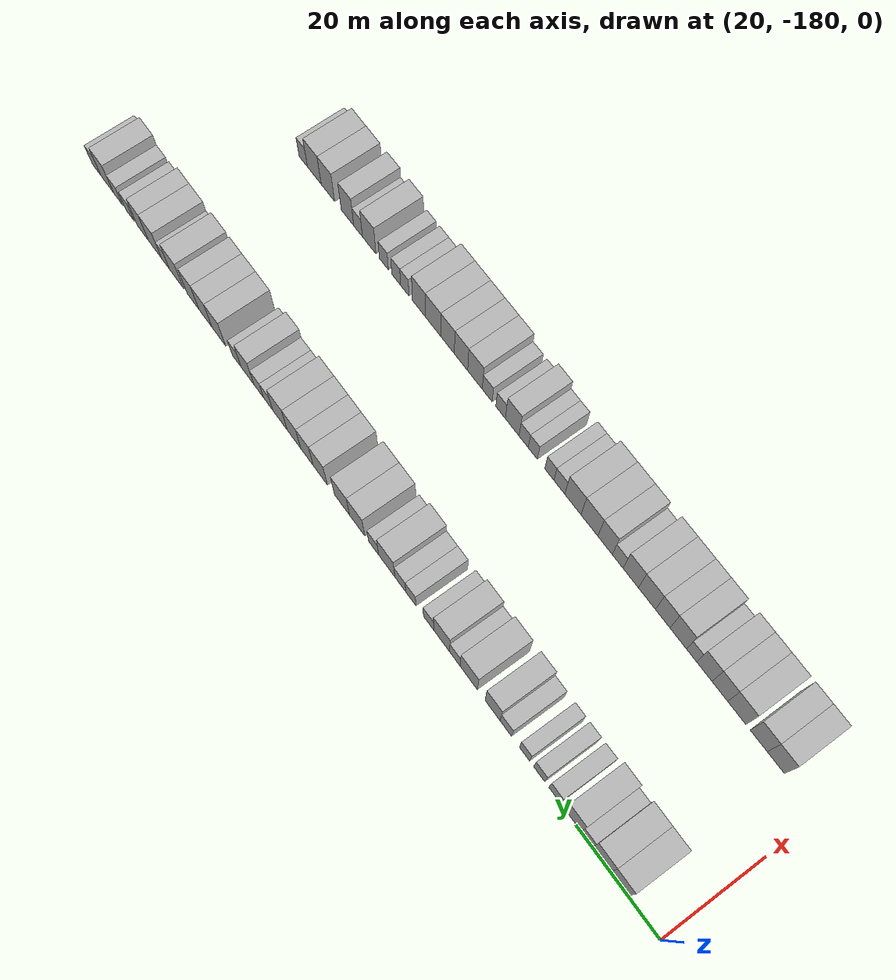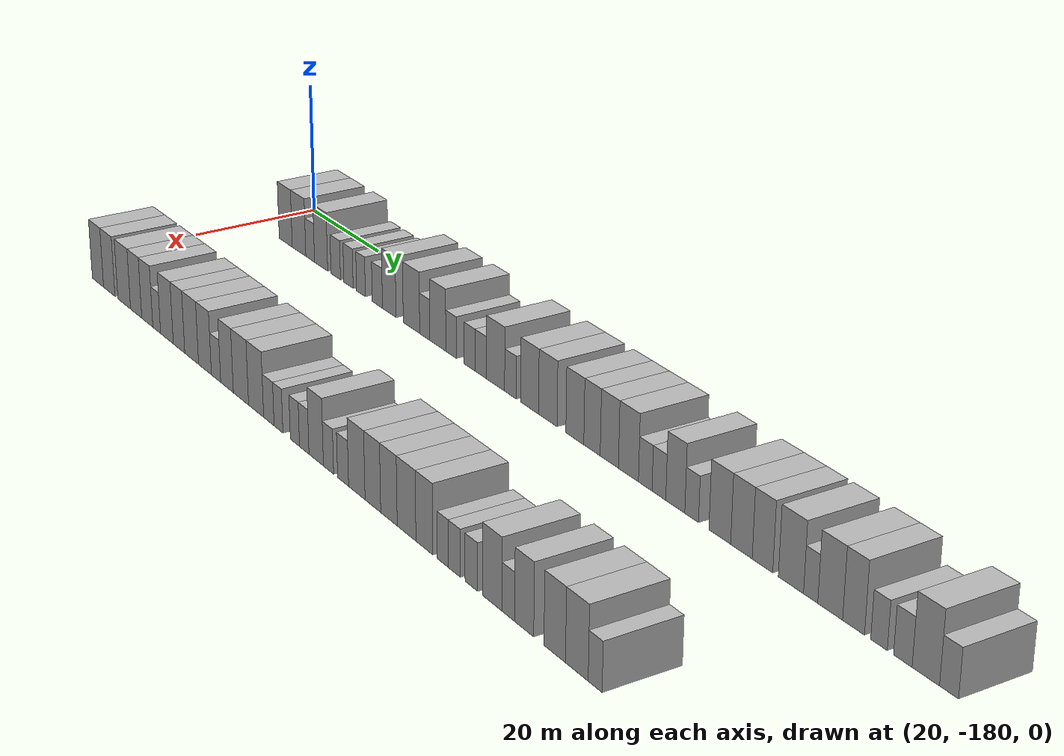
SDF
<sdf version="1.6">
 <world name="default">
  <model name="building_73">
   <static>1</static>
   <pose>25.0000 -170.2299 0 0.000000 0.000000 0.000000</pose>
   <link name="link">
    <pose>0 0 4.50 0 0 0</pose>
    <collision name="collision"><geometry><box><size>10.0000 4.2090 9.0000</size></box></geometry></collision>
    <visual name="visual">
     <cast_shadows>0</cast_shadows>
     <geometry><box><size>10.0000 4.2090 9.0000</size></box></geometry>
     <material>
      <script>
       <uri>model://HANNAS_wall/materials/scripts</uri>
       <uri>model://HANNAS_wall/materials/textures</uri>
       <name>vrc/HANNAS_wall</name>
      </script>
     </material>
    </visual>
   </link>
  </model>
  <model name="building_74">
   <static>1</static>
   <pose>25.0000 -165.9624 0 0.000000 0.000000 0.000000</pose>
   <link name="link">
    <pose>0 0 4.50 0 0 0</pose>
    <collision name="collision"><geometry><box><size>10.0000 4.3260 9.0000</size></box></geometry></collision>
    <visual name="visual">
     <cast_shadows>0</cast_shadows>
     <geometry><box><size>10.0000 4.3260 9.0000</size></box></geometry>
     <material>
      <script>
       <uri>model://HANNAS_wall/materials/scripts</uri>
       <uri>model://HANNAS_wall/materials/textures</uri>
       <name>vrc/HANNAS_wall</name>
      </script>
     </material>
    </visual>
   </link>
  </model>
  <model name="building_75">
   <static>1</static>
   <pose>25.0000 -162.4385 0 0.000000 0.000000 0.000000</pose>
   <link name="link">
    <pose>0 0 3.00 0 0 0</pose>
    <collision name="collision"><geometry><box><size>10.0000 2.7218 6.0000</size></box></geometry></collision>
    <visual name="visual">
     <cast_shadows>0</cast_shadows>
     <geometry><box><size>10.0000 2.7218 6.0000</size></box></geometry>
     <material>
      <script>
       <uri>model://HANNAS_wall/materials/scripts</uri>
       <uri>model://HANNAS_wall/materials/textures</uri>
       <name>vrc/HANNAS_wall</name>
      </script>
     </material>
    </visual>
   </link>
  </model>
  <model name="building_76">
   <static>1</static>
   <pose>25.0000 -159.0481 0 0.000000 0.000000 0.000000</pose>
   <link name="link">
    <pose>0 0 4.50 0 0 0</pose>
    <collision name="collision"><geometry><box><size>10.0000 4.0591 9.0000</size></box></geometry></collision>
    <visual name="visual">
     <cast_shadows>0</cast_shadows>
     <geometry><box><size>10.0000 4.0591 9.0000</size></box></geometry>
     <material>
      <script>
       <uri>model://HANNAS_wall/materials/scripts</uri>
       <uri>model://HANNAS_wall/materials/textures</uri>
       <name>vrc/HANNAS_wall</name>
      </script>
     </material>
    </visual>
   </link>
  </model>
  <model name="building_77">
   <static>1</static>
   <pose>25.0000 -154.5832 0 0.000000 0.000000 0.000000</pose>
   <link name="link">
    <pose>0 0 3.00 0 0 0</pose>
    <collision name="collision"><geometry><box><size>10.0000 2.8707 6.0000</size></box></geometry></collision>
    <visual name="visual">
     <cast_shadows>0</cast_shadows>
     <geometry><box><size>10.0000 2.8707 6.0000</size></box></geometry>
     <material>
      <script>
       <uri>model://HANNAS_wall/materials/scripts</uri>
       <uri>model://HANNAS_wall/materials/textures</uri>
       <name>vrc/HANNAS_wall</name>
      </script>
     </material>
    </visual>
   </link>
  </model>
  <model name="building_78">
   <static>1</static>
   <pose>25.0000 -150.7573 0 0.000000 0.000000 0.000000</pose>
   <link name="link">
    <pose>0 0 3.00 0 0 0</pose>
    <collision name="collision"><geometry><box><size>10.0000 2.7813 6.0000</size></box></geometry></collision>
    <visual name="visual">
     <cast_shadows>0</cast_shadows>
     <geometry><box><size>10.0000 2.7813 6.0000</size></box></geometry>
     <material>
      <script>
       <uri>model://HANNAS_wall/materials/scripts</uri>
       <uri>model://HANNAS_wall/materials/textures</uri>
       <name>vrc/HANNAS_wall</name>
      </script>
     </material>
    </visual>
   </link>
  </model>
  <model name="building_79">
   <static>1</static>
   <pose>25.0000 -147.0840 0 0.000000 0.000000 0.000000</pose>
   <link name="link">
    <pose>0 0 3.00 0 0 0</pose>
    <collision name="collision"><geometry><box><size>10.0000 2.5653 6.0000</size></box></geometry></collision>
    <visual name="visual">
     <cast_shadows>0</cast_shadows>
     <geometry><box><size>10.0000 2.5653 6.0000</size></box></geometry>
     <material>
      <script>
       <uri>model://HANNAS_wall/materials/scripts</uri>
       <uri>model://HANNAS_wall/materials/textures</uri>
       <name>vrc/HANNAS_wall</name>
      </script>
     </material>
    </visual>
   </link>
  </model>
  <model name="building_80">
   <static>1</static>
   <pose>25.0000 -142.3351 0 0.000000 0.000000 0.000000</pose>
   <link name="link">
    <pose>0 0 3.00 0 0 0</pose>
    <collision name="collision"><geometry><box><size>10.0000 2.9325 6.0000</size></box></geometry></collision>
    <visual name="visual">
     <cast_shadows>0</cast_shadows>
     <geometry><box><size>10.0000 2.9325 6.0000</size></box></geometry>
     <material>
      <script>
       <uri>model://HANNAS_wall/materials/scripts</uri>
       <uri>model://HANNAS_wall/materials/textures</uri>
       <name>vrc/HANNAS_wall</name>
      </script>
     </material>
    </visual>
   </link>
  </model>
  <model name="building_81">
   <static>1</static>
   <pose>25.0000 -138.9552 0 0.000000 0.000000 0.000000</pose>
   <link name="link">
    <pose>0 0 4.50 0 0 0</pose>
    <collision name="collision"><geometry><box><size>10.0000 3.8273 9.0000</size></box></geometry></collision>
    <visual name="visual">
     <cast_shadows>0</cast_shadows>
     <geometry><box><size>10.0000 3.8273 9.0000</size></box></geometry>
     <material>
      <script>
       <uri>model://HANNAS_wall/materials/scripts</uri>
       <uri>model://HANNAS_wall/materials/textures</uri>
       <name>vrc/HANNAS_wall</name>
      </script>
     </material>
    </visual>
   </link>
  </model>
  <model name="building_82">
   <static>1</static>
   <pose>25.0000 -132.7958 0 0.000000 0.000000 0.000000</pose>
   <link name="link">
    <pose>0 0 4.50 0 0 0</pose>
    <collision name="collision"><geometry><box><size>10.0000 4.4916 9.0000</size></box></geometry></collision>
    <visual name="visual">
     <cast_shadows>0</cast_shadows>
     <geometry><box><size>10.0000 4.4916 9.0000</size></box></geometry>
     <material>
      <script>
       <uri>model://HANNAS_wall/materials/scripts</uri>
       <uri>model://HANNAS_wall/materials/textures</uri>
       <name>vrc/HANNAS_wall</name>
      </script>
     </material>
    </visual>
   </link>
  </model>
  <model name="building_83">
   <static>1</static>
   <pose>25.0000 -129.1757 0 0.000000 0.000000 0.000000</pose>
   <link name="link">
    <pose>0 0 3.00 0 0 0</pose>
    <collision name="collision"><geometry><box><size>10.0000 2.7487 6.0000</size></box></geometry></collision>
    <visual name="visual">
     <cast_shadows>0</cast_shadows>
     <geometry><box><size>10.0000 2.7487 6.0000</size></box></geometry>
     <material>
      <script>
       <uri>model://HANNAS_wall/materials/scripts</uri>
       <uri>model://HANNAS_wall/materials/textures</uri>
       <name>vrc/HANNAS_wall</name>
      </script>
     </material>
    </visual>
   </link>
  </model>
  <model name="building_84">
   <static>1</static>
   <pose>25.0000 -125.6874 0 0.000000 0.000000 0.000000</pose>
   <link name="link">
    <pose>0 0 4.50 0 0 0</pose>
    <collision name="collision"><geometry><box><size>10.0000 4.2279 9.0000</size></box></geometry></collision>
    <visual name="visual">
     <cast_shadows>0</cast_shadows>
     <geometry><box><size>10.0000 4.2279 9.0000</size></box></geometry>
     <material>
      <script>
       <uri>model://HANNAS_wall/materials/scripts</uri>
       <uri>model://HANNAS_wall/materials/textures</uri>
       <name>vrc/HANNAS_wall</name>
      </script>
     </material>
    </visual>
   </link>
  </model>
  <model name="building_85">
   <static>1</static>
   <pose>25.0000 -122.2124 0 0.000000 0.000000 0.000000</pose>
   <link name="link">
    <pose>0 0 3.00 0 0 0</pose>
    <collision name="collision"><geometry><box><size>10.0000 2.7220 6.0000</size></box></geometry></collision>
    <visual name="visual">
     <cast_shadows>0</cast_shadows>
     <geometry><box><size>10.0000 2.7220 6.0000</size></box></geometry>
     <material>
      <script>
       <uri>model://HANNAS_wall/materials/scripts</uri>
       <uri>model://HANNAS_wall/materials/textures</uri>
       <name>vrc/HANNAS_wall</name>
      </script>
     </material>
    </visual>
   </link>
  </model>
  <model name="building_86">
   <static>1</static>
   <pose>25.0000 -117.4787 0 0.000000 0.000000 0.000000</pose>
   <link name="link">
    <pose>0 0 3.00 0 0 0</pose>
    <collision name="collision"><geometry><box><size>10.0000 2.7455 6.0000</size></box></geometry></collision>
    <visual name="visual">
     <cast_shadows>0</cast_shadows>
     <geometry><box><size>10.0000 2.7455 6.0000</size></box></geometry>
     <material>
      <script>
       <uri>model://HANNAS_wall/materials/scripts</uri>
       <uri>model://HANNAS_wall/materials/textures</uri>
       <name>vrc/HANNAS_wall</name>
      </script>
     </material>
    </visual>
   </link>
  </model>
  <model name="building_87">
   <static>1</static>
   <pose>25.0000 -114.6324 0 0.000000 0.000000 0.000000</pose>
   <link name="link">
    <pose>0 0 3.00 0 0 0</pose>
    <collision name="collision"><geometry><box><size>10.0000 2.9470 6.0000</size></box></geometry></collision>
    <visual name="visual">
     <cast_shadows>0</cast_shadows>
     <geometry><box><size>10.0000 2.9470 6.0000</size></box></geometry>
     <material>
      <script>
       <uri>model://HANNAS_wall/materials/scripts</uri>
       <uri>model://HANNAS_wall/materials/textures</uri>
       <name>vrc/HANNAS_wall</name>
      </script>
     </material>
    </visual>
   </link>
  </model>
  <model name="building_88">
   <static>1</static>
   <pose>25.0000 -110.9489 0 0.000000 0.000000 0.000000</pose>
   <link name="link">
    <pose>0 0 4.50 0 0 0</pose>
    <collision name="collision"><geometry><box><size>10.0000 4.4201 9.0000</size></box></geometry></collision>
    <visual name="visual">
     <cast_shadows>0</cast_shadows>
     <geometry><box><size>10.0000 4.4201 9.0000</size></box></geometry>
     <material>
      <script>
       <uri>model://HANNAS_wall/materials/scripts</uri>
       <uri>model://HANNAS_wall/materials/textures</uri>
       <name>vrc/HANNAS_wall</name>
      </script>
     </material>
    </visual>
   </link>
  </model>
  <model name="building_89">
   <static>1</static>
   <pose>25.0000 -107.3206 0 0.000000 0.000000 0.000000</pose>
   <link name="link">
    <pose>0 0 3.00 0 0 0</pose>
    <collision name="collision"><geometry><box><size>10.0000 2.8364 6.0000</size></box></geometry></collision>
    <visual name="visual">
     <cast_shadows>0</cast_shadows>
     <geometry><box><size>10.0000 2.8364 6.0000</size></box></geometry>
     <material>
      <script>
       <uri>model://HANNAS_wall/materials/scripts</uri>
       <uri>model://HANNAS_wall/materials/textures</uri>
       <name>vrc/HANNAS_wall</name>
      </script>
     </material>
    </visual>
   </link>
  </model>
  <model name="building_90">
   <static>1</static>
   <pose>25.0000 -102.7713 0 0.000000 0.000000 0.000000</pose>
   <link name="link">
    <pose>0 0 4.50 0 0 0</pose>
    <collision name="collision"><geometry><box><size>10.0000 4.2622 9.0000</size></box></geometry></collision>
    <visual name="visual">
     <cast_shadows>0</cast_shadows>
     <geometry><box><size>10.0000 4.2622 9.0000</size></box></geometry>
     <material>
      <script>
       <uri>model://HANNAS_wall/materials/scripts</uri>
       <uri>model://HANNAS_wall/materials/textures</uri>
       <name>vrc/HANNAS_wall</name>
      </script>
     </material>
    </visual>
   </link>
  </model>
  <model name="building_91">
   <static>1</static>
   <pose>25.0000 -98.5032 0 0.000000 0.000000 0.000000</pose>
   <link name="link">
    <pose>0 0 4.50 0 0 0</pose>
    <collision name="collision"><geometry><box><size>10.0000 4.2741 9.0000</size></box></geometry></collision>
    <visual name="visual">
     <cast_shadows>0</cast_shadows>
     <geometry><box><size>10.0000 4.2741 9.0000</size></box></geometry>
     <material>
      <script>
       <uri>model://HANNAS_wall/materials/scripts</uri>
       <uri>model://HANNAS_wall/materials/textures</uri>
       <name>vrc/HANNAS_wall</name>
      </script>
     </material>
    </visual>
   </link>
  </model>
  <model name="building_92">
   <static>1</static>
   <pose>25.0000 -92.3604 0 0.000000 0.000000 0.000000</pose>
   <link name="link">
    <pose>0 0 4.50 0 0 0</pose>
    <collision name="collision"><geometry><box><size>10.0000 4.0114 9.0000</size></box></geometry></collision>
    <visual name="visual">
     <cast_shadows>0</cast_shadows>
     <geometry><box><size>10.0000 4.0114 9.0000</size></box></geometry>
     <material>
      <script>
       <uri>model://HANNAS_wall/materials/scripts</uri>
       <uri>model://HANNAS_wall/materials/textures</uri>
       <name>vrc/HANNAS_wall</name>
      </script>
     </material>
    </visual>
   </link>
  </model>
  <model name="building_93">
   <static>1</static>
   <pose>25.0000 -88.5532 0 0.000000 0.000000 0.000000</pose>
   <link name="link">
    <pose>0 0 4.50 0 0 0</pose>
    <collision name="collision"><geometry><box><size>10.0000 3.6030 9.0000</size></box></geometry></collision>
    <visual name="visual">
     <cast_shadows>0</cast_shadows>
     <geometry><box><size>10.0000 3.6030 9.0000</size></box></geometry>
     <material>
      <script>
       <uri>model://HANNAS_wall/materials/scripts</uri>
       <uri>model://HANNAS_wall/materials/textures</uri>
       <name>vrc/HANNAS_wall</name>
      </script>
     </material>
    </visual>
   </link>
  </model>
  <model name="building_94">
   <static>1</static>
   <pose>25.0000 -84.7882 0 0.000000 0.000000 0.000000</pose>
   <link name="link">
    <pose>0 0 4.50 0 0 0</pose>
    <collision name="collision"><geometry><box><size>10.0000 3.9270 9.0000</size></box></geometry></collision>
    <visual name="visual">
     <cast_shadows>0</cast_shadows>
     <geometry><box><size>10.0000 3.9270 9.0000</size></box></geometry>
     <material>
      <script>
       <uri>model://HANNAS_wall/materials/scripts</uri>
       <uri>model://HANNAS_wall/materials/textures</uri>
       <name>vrc/HANNAS_wall</name>
      </script>
     </material>
    </visual>
   </link>
  </model>
  <model name="building_95">
   <static>1</static>
   <pose>25.0000 -80.7180 0 0.000000 0.000000 0.000000</pose>
   <link name="link">
    <pose>0 0 4.50 0 0 0</pose>
    <collision name="collision"><geometry><box><size>10.0000 4.2134 9.0000</size></box></geometry></collision>
    <visual name="visual">
     <cast_shadows>0</cast_shadows>
     <geometry><box><size>10.0000 4.2134 9.0000</size></box></geometry>
     <material>
      <script>
       <uri>model://HANNAS_wall/materials/scripts</uri>
       <uri>model://HANNAS_wall/materials/textures</uri>
       <name>vrc/HANNAS_wall</name>
      </script>
     </material>
    </visual>
   </link>
  </model>
  <model name="building_96">
   <static>1</static>
   <pose>25.0000 -77.2069 0 0.000000 0.000000 0.000000</pose>
   <link name="link">
    <pose>0 0 3.00 0 0 0</pose>
    <collision name="collision"><geometry><box><size>10.0000 2.8090 6.0000</size></box></geometry></collision>
    <visual name="visual">
     <cast_shadows>0</cast_shadows>
     <geometry><box><size>10.0000 2.8090 6.0000</size></box></geometry>
     <material>
      <script>
       <uri>model://HANNAS_wall/materials/scripts</uri>
       <uri>model://HANNAS_wall/materials/textures</uri>
       <name>vrc/HANNAS_wall</name>
      </script>
     </material>
    </visual>
   </link>
  </model>
  <model name="building_97">
   <static>1</static>
   <pose>25.0000 -74.4031 0 0.000000 0.000000 0.000000</pose>
   <link name="link">
    <pose>0 0 3.00 0 0 0</pose>
    <collision name="collision"><geometry><box><size>10.0000 2.7984 6.0000</size></box></geometry></collision>
    <visual name="visual">
     <cast_shadows>0</cast_shadows>
     <geometry><box><size>10.0000 2.7984 6.0000</size></box></geometry>
     <material>
      <script>
       <uri>model://HANNAS_wall/materials/scripts</uri>
       <uri>model://HANNAS_wall/materials/textures</uri>
       <name>vrc/HANNAS_wall</name>
      </script>
     </material>
    </visual>
   </link>
  </model>
  <model name="building_98">
   <static>1</static>
   <pose>25.0000 -71.1019 0 0.000000 0.000000 0.000000</pose>
   <link name="link">
    <pose>0 0 4.50 0 0 0</pose>
    <collision name="collision"><geometry><box><size>10.0000 3.8042 9.0000</size></box></geometry></collision>
    <visual name="visual">
     <cast_shadows>0</cast_shadows>
     <geometry><box><size>10.0000 3.8042 9.0000</size></box></geometry>
     <material>
      <script>
       <uri>model://HANNAS_wall/materials/scripts</uri>
       <uri>model://HANNAS_wall/materials/textures</uri>
       <name>vrc/HANNAS_wall</name>
      </script>
     </material>
    </visual>
   </link>
  </model>
  <model name="building_99">
   <static>1</static>
   <pose>25.0000 -67.8503 0 0.000000 0.000000 0.000000</pose>
   <link name="link">
    <pose>0 0 3.00 0 0 0</pose>
    <collision name="collision"><geometry><box><size>10.0000 2.6990 6.0000</size></box></geometry></collision>
    <visual name="visual">
     <cast_shadows>0</cast_shadows>
     <geometry><box><size>10.0000 2.6990 6.0000</size></box></geometry>
     <material>
      <script>
       <uri>model://HANNAS_wall/materials/scripts</uri>
       <uri>model://HANNAS_wall/materials/textures</uri>
       <name>vrc/HANNAS_wall</name>
      </script>
     </material>
    </visual>
   </link>
  </model>
  <model name="building_100">
   <static>1</static>
   <pose>25.0000 -62.4323 0 0.000000 0.000000 0.000000</pose>
   <link name="link">
    <pose>0 0 4.50 0 0 0</pose>
    <collision name="collision"><geometry><box><size>10.0000 4.1368 9.0000</size></box></geometry></collision>
    <visual name="visual">
     <cast_shadows>0</cast_shadows>
     <geometry><box><size>10.0000 4.1368 9.0000</size></box></geometry>
     <material>
      <script>
       <uri>model://HANNAS_wall/materials/scripts</uri>
       <uri>model://HANNAS_wall/materials/textures</uri>
       <name>vrc/HANNAS_wall</name>
      </script>
     </material>
    </visual>
   </link>
  </model>
  <model name="building_101">
   <static>1</static>
   <pose>25.0000 -58.3544 0 0.000000 0.000000 0.000000</pose>
   <link name="link">
    <pose>0 0 4.50 0 0 0</pose>
    <collision name="collision"><geometry><box><size>10.0000 4.0189 9.0000</size></box></geometry></collision>
    <visual name="visual">
     <cast_shadows>0</cast_shadows>
     <geometry><box><size>10.0000 4.0189 9.0000</size></box></geometry>
     <material>
      <script>
       <uri>model://HANNAS_wall/materials/scripts</uri>
       <uri>model://HANNAS_wall/materials/textures</uri>
       <name>vrc/HANNAS_wall</name>
      </script>
     </material>
    </visual>
   </link>
  </model>
  <model name="building_102">
   <static>1</static>
   <pose>25.0000 -54.4733 0 0.000000 0.000000 0.000000</pose>
   <link name="link">
    <pose>0 0 4.50 0 0 0</pose>
    <collision name="collision"><geometry><box><size>10.0000 3.7434 9.0000</size></box></geometry></collision>
    <visual name="visual">
     <cast_shadows>0</cast_shadows>
     <geometry><box><size>10.0000 3.7434 9.0000</size></box></geometry>
     <material>
      <script>
       <uri>model://HANNAS_wall/materials/scripts</uri>
       <uri>model://HANNAS_wall/materials/textures</uri>
       <name>vrc/HANNAS_wall</name>
      </script>
     </material>
    </visual>
   </link>
  </model>
  <model name="building_103">
   <static>1</static>
   <pose>25.0000 -49.3751 0 0.000000 0.000000 0.000000</pose>
   <link name="link">
    <pose>0 0 4.50 0 0 0</pose>
    <collision name="collision"><geometry><box><size>10.0000 4.4528 9.0000</size></box></geometry></collision>
    <visual name="visual">
     <cast_shadows>0</cast_shadows>
     <geometry><box><size>10.0000 4.4528 9.0000</size></box></geometry>
     <material>
      <script>
       <uri>model://HANNAS_wall/materials/scripts</uri>
       <uri>model://HANNAS_wall/materials/textures</uri>
       <name>vrc/HANNAS_wall</name>
      </script>
     </material>
    </visual>
   </link>
  </model>
  <model name="building_104">
   <static>1</static>
   <pose>25.0000 -45.9184 0 0.000000 0.000000 0.000000</pose>
   <link name="link">
    <pose>0 0 3.00 0 0 0</pose>
    <collision name="collision"><geometry><box><size>10.0000 2.4606 6.0000</size></box></geometry></collision>
    <visual name="visual">
     <cast_shadows>0</cast_shadows>
     <geometry><box><size>10.0000 2.4606 6.0000</size></box></geometry>
     <material>
      <script>
       <uri>model://HANNAS_wall/materials/scripts</uri>
       <uri>model://HANNAS_wall/materials/textures</uri>
       <name>vrc/HANNAS_wall</name>
      </script>
     </material>
    </visual>
   </link>
  </model>
  <model name="building_105">
   <static>1</static>
   <pose>25.0000 -42.5791 0 0.000000 0.000000 0.000000</pose>
   <link name="link">
    <pose>0 0 4.50 0 0 0</pose>
    <collision name="collision"><geometry><box><size>10.0000 4.2181 9.0000</size></box></geometry></collision>
    <visual name="visual">
     <cast_shadows>0</cast_shadows>
     <geometry><box><size>10.0000 4.2181 9.0000</size></box></geometry>
     <material>
      <script>
       <uri>model://HANNAS_wall/materials/scripts</uri>
       <uri>model://HANNAS_wall/materials/textures</uri>
       <name>vrc/HANNAS_wall</name>
      </script>
     </material>
    </visual>
   </link>
  </model>
  <model name="building_106">
   <static>1</static>
   <pose>25.0000 -38.6514 0 0.000000 0.000000 0.000000</pose>
   <link name="link">
    <pose>0 0 4.50 0 0 0</pose>
    <collision name="collision"><geometry><box><size>10.0000 3.6373 9.0000</size></box></geometry></collision>
    <visual name="visual">
     <cast_shadows>0</cast_shadows>
     <geometry><box><size>10.0000 3.6373 9.0000</size></box></geometry>
     <material>
      <script>
       <uri>model://HANNAS_wall/materials/scripts</uri>
       <uri>model://HANNAS_wall/materials/textures</uri>
       <name>vrc/HANNAS_wall</name>
      </script>
     </material>
    </visual>
   </link>
  </model>
  <model name="building_107">
   <static>1</static>
   <pose>25.0000 -34.4900 0 0.000000 0.000000 0.000000</pose>
   <link name="link">
    <pose>0 0 3.00 0 0 0</pose>
    <collision name="collision"><geometry><box><size>10.0000 2.6855 6.0000</size></box></geometry></collision>
    <visual name="visual">
     <cast_shadows>0</cast_shadows>
     <geometry><box><size>10.0000 2.6855 6.0000</size></box></geometry>
     <material>
      <script>
       <uri>model://HANNAS_wall/materials/scripts</uri>
       <uri>model://HANNAS_wall/materials/textures</uri>
       <name>vrc/HANNAS_wall</name>
      </script>
     </material>
    </visual>
   </link>
  </model>
  <model name="building_108">
   <static>1</static>
   <pose>25.0000 -30.6844 0 0.000000 0.000000 0.000000</pose>
   <link name="link">
    <pose>0 0 3.00 0 0 0</pose>
    <collision name="collision"><geometry><box><size>10.0000 2.9257 6.0000</size></box></geometry></collision>
    <visual name="visual">
     <cast_shadows>0</cast_shadows>
     <geometry><box><size>10.0000 2.9257 6.0000</size></box></geometry>
     <material>
      <script>
       <uri>model://HANNAS_wall/materials/scripts</uri>
       <uri>model://HANNAS_wall/materials/textures</uri>
       <name>vrc/HANNAS_wall</name>
      </script>
     </material>
    </visual>
   </link>
  </model>
  <model name="building_109">
   <static>1</static>
   <pose>25.0000 -27.1060 0 0.000000 0.000000 0.000000</pose>
   <link name="link">
    <pose>0 0 4.50 0 0 0</pose>
    <collision name="collision"><geometry><box><size>10.0000 4.2311 9.0000</size></box></geometry></collision>
    <visual name="visual">
     <cast_shadows>0</cast_shadows>
     <geometry><box><size>10.0000 4.2311 9.0000</size></box></geometry>
     <material>
      <script>
       <uri>model://HANNAS_wall/materials/scripts</uri>
       <uri>model://HANNAS_wall/materials/textures</uri>
       <name>vrc/HANNAS_wall</name>
      </script>
     </material>
    </visual>
   </link>
  </model>
  <model name="building_110">
   <static>1</static>
   <pose>25.0000 -23.5503 0 0.000000 0.000000 0.000000</pose>
   <link name="link">
    <pose>0 0 3.00 0 0 0</pose>
    <collision name="collision"><geometry><box><size>10.0000 2.8802 6.0000</size></box></geometry></collision>
    <visual name="visual">
     <cast_shadows>0</cast_shadows>
     <geometry><box><size>10.0000 2.8802 6.0000</size></box></geometry>
     <material>
      <script>
       <uri>model://HANNAS_wall/materials/scripts</uri>
       <uri>model://HANNAS_wall/materials/textures</uri>
       <name>vrc/HANNAS_wall</name>
      </script>
     </material>
    </visual>
   </link>
  </model>
  <model name="building_311">
   <static>1</static>
   <pose>55.0000 -170.3010 0 0.000000 0.000000 0.000000</pose>
   <link name="link">
    <pose>0 0 4.50 0 0 0</pose>
    <collision name="collision"><geometry><box><size>10.0000 4.0097 9.0000</size></box></geometry></collision>
    <visual name="visual">
     <cast_shadows>0</cast_shadows>
     <geometry><box><size>10.0000 4.0097 9.0000</size></box></geometry>
     <material>
      <script>
       <uri>model://HANNAS_wall/materials/scripts</uri>
       <uri>model://HANNAS_wall/materials/textures</uri>
       <name>vrc/HANNAS_wall</name>
      </script>
     </material>
    </visual>
   </link>
  </model>
  <model name="building_312">
   <static>1</static>
   <pose>55.0000 -166.2937 0 0.000000 0.000000 0.000000</pose>
   <link name="link">
    <pose>0 0 4.50 0 0 0</pose>
    <collision name="collision"><geometry><box><size>10.0000 4.0049 9.0000</size></box></geometry></collision>
    <visual name="visual">
     <cast_shadows>0</cast_shadows>
     <geometry><box><size>10.0000 4.0049 9.0000</size></box></geometry>
     <material>
      <script>
       <uri>model://HANNAS_wall/materials/scripts</uri>
       <uri>model://HANNAS_wall/materials/textures</uri>
       <name>vrc/HANNAS_wall</name>
      </script>
     </material>
    </visual>
   </link>
  </model>
  <model name="building_313">
   <static>1</static>
   <pose>55.0000 -161.1055 0 0.000000 0.000000 0.000000</pose>
   <link name="link">
    <pose>0 0 4.50 0 0 0</pose>
    <collision name="collision"><geometry><box><size>10.0000 4.3714 9.0000</size></box></geometry></collision>
    <visual name="visual">
     <cast_shadows>0</cast_shadows>
     <geometry><box><size>10.0000 4.3714 9.0000</size></box></geometry>
     <material>
      <script>
       <uri>model://HANNAS_wall/materials/scripts</uri>
       <uri>model://HANNAS_wall/materials/textures</uri>
       <name>vrc/HANNAS_wall</name>
      </script>
     </material>
    </visual>
   </link>
  </model>
  <model name="building_314">
   <static>1</static>
   <pose>55.0000 -157.0350 0 0.000000 0.000000 0.000000</pose>
   <link name="link">
    <pose>0 0 4.50 0 0 0</pose>
    <collision name="collision"><geometry><box><size>10.0000 3.7695 9.0000</size></box></geometry></collision>
    <visual name="visual">
     <cast_shadows>0</cast_shadows>
     <geometry><box><size>10.0000 3.7695 9.0000</size></box></geometry>
     <material>
      <script>
       <uri>model://HANNAS_wall/materials/scripts</uri>
       <uri>model://HANNAS_wall/materials/textures</uri>
       <name>vrc/HANNAS_wall</name>
      </script>
     </material>
    </visual>
   </link>
  </model>
  <model name="building_315">
   <static>1</static>
   <pose>55.0000 -153.3155 0 0.000000 0.000000 0.000000</pose>
   <link name="link">
    <pose>0 0 4.50 0 0 0</pose>
    <collision name="collision"><geometry><box><size>10.0000 3.6696 9.0000</size></box></geometry></collision>
    <visual name="visual">
     <cast_shadows>0</cast_shadows>
     <geometry><box><size>10.0000 3.6696 9.0000</size></box></geometry>
     <material>
      <script>
       <uri>model://HANNAS_wall/materials/scripts</uri>
       <uri>model://HANNAS_wall/materials/textures</uri>
       <name>vrc/HANNAS_wall</name>
      </script>
     </material>
    </visual>
   </link>
  </model>
  <model name="building_316">
   <static>1</static>
   <pose>55.0000 -150.2092 0 0.000000 0.000000 0.000000</pose>
   <link name="link">
    <pose>0 0 3.00 0 0 0</pose>
    <collision name="collision"><geometry><box><size>10.0000 2.5430 6.0000</size></box></geometry></collision>
    <visual name="visual">
     <cast_shadows>0</cast_shadows>
     <geometry><box><size>10.0000 2.5430 6.0000</size></box></geometry>
     <material>
      <script>
       <uri>model://HANNAS_wall/materials/scripts</uri>
       <uri>model://HANNAS_wall/materials/textures</uri>
       <name>vrc/HANNAS_wall</name>
      </script>
     </material>
    </visual>
   </link>
  </model>
  <model name="building_317">
   <static>1</static>
   <pose>55.0000 -146.9010 0 0.000000 0.000000 0.000000</pose>
   <link name="link">
    <pose>0 0 4.50 0 0 0</pose>
    <collision name="collision"><geometry><box><size>10.0000 4.0736 9.0000</size></box></geometry></collision>
    <visual name="visual">
     <cast_shadows>0</cast_shadows>
     <geometry><box><size>10.0000 4.0736 9.0000</size></box></geometry>
     <material>
      <script>
       <uri>model://HANNAS_wall/materials/scripts</uri>
       <uri>model://HANNAS_wall/materials/textures</uri>
       <name>vrc/HANNAS_wall</name>
      </script>
     </material>
    </visual>
   </link>
  </model>
  <model name="building_318">
   <static>1</static>
   <pose>55.0000 -143.0462 0 0.000000 0.000000 0.000000</pose>
   <link name="link">
    <pose>0 0 4.50 0 0 0</pose>
    <collision name="collision"><geometry><box><size>10.0000 3.6360 9.0000</size></box></geometry></collision>
    <visual name="visual">
     <cast_shadows>0</cast_shadows>
     <geometry><box><size>10.0000 3.6360 9.0000</size></box></geometry>
     <material>
      <script>
       <uri>model://HANNAS_wall/materials/scripts</uri>
       <uri>model://HANNAS_wall/materials/textures</uri>
       <name>vrc/HANNAS_wall</name>
      </script>
     </material>
    </visual>
   </link>
  </model>
  <model name="building_319">
   <static>1</static>
   <pose>55.0000 -139.0885 0 0.000000 0.000000 0.000000</pose>
   <link name="link">
    <pose>0 0 4.50 0 0 0</pose>
    <collision name="collision"><geometry><box><size>10.0000 4.2795 9.0000</size></box></geometry></collision>
    <visual name="visual">
     <cast_shadows>0</cast_shadows>
     <geometry><box><size>10.0000 4.2795 9.0000</size></box></geometry>
     <material>
      <script>
       <uri>model://HANNAS_wall/materials/scripts</uri>
       <uri>model://HANNAS_wall/materials/textures</uri>
       <name>vrc/HANNAS_wall</name>
      </script>
     </material>
    </visual>
   </link>
  </model>
  <model name="building_320">
   <static>1</static>
   <pose>55.0000 -135.0015 0 0.000000 0.000000 0.000000</pose>
   <link name="link">
    <pose>0 0 4.50 0 0 0</pose>
    <collision name="collision"><geometry><box><size>10.0000 3.8944 9.0000</size></box></geometry></collision>
    <visual name="visual">
     <cast_shadows>0</cast_shadows>
     <geometry><box><size>10.0000 3.8944 9.0000</size></box></geometry>
     <material>
      <script>
       <uri>model://HANNAS_wall/materials/scripts</uri>
       <uri>model://HANNAS_wall/materials/textures</uri>
       <name>vrc/HANNAS_wall</name>
      </script>
     </material>
    </visual>
   </link>
  </model>
  <model name="building_321">
   <static>1</static>
   <pose>55.0000 -131.6665 0 0.000000 0.000000 0.000000</pose>
   <link name="link">
    <pose>0 0 3.00 0 0 0</pose>
    <collision name="collision"><geometry><box><size>10.0000 2.7757 6.0000</size></box></geometry></collision>
    <visual name="visual">
     <cast_shadows>0</cast_shadows>
     <geometry><box><size>10.0000 2.7757 6.0000</size></box></geometry>
     <material>
      <script>
       <uri>model://HANNAS_wall/materials/scripts</uri>
       <uri>model://HANNAS_wall/materials/textures</uri>
       <name>vrc/HANNAS_wall</name>
      </script>
     </material>
    </visual>
   </link>
  </model>
  <model name="building_322">
   <static>1</static>
   <pose>55.0000 -128.4192 0 0.000000 0.000000 0.000000</pose>
   <link name="link">
    <pose>0 0 4.50 0 0 0</pose>
    <collision name="collision"><geometry><box><size>10.0000 3.7189 9.0000</size></box></geometry></collision>
    <visual name="visual">
     <cast_shadows>0</cast_shadows>
     <geometry><box><size>10.0000 3.7189 9.0000</size></box></geometry>
     <material>
      <script>
       <uri>model://HANNAS_wall/materials/scripts</uri>
       <uri>model://HANNAS_wall/materials/textures</uri>
       <name>vrc/HANNAS_wall</name>
      </script>
     </material>
    </visual>
   </link>
  </model>
  <model name="building_323">
   <static>1</static>
   <pose>55.0000 -124.3682 0 0.000000 0.000000 0.000000</pose>
   <link name="link">
    <pose>0 0 4.50 0 0 0</pose>
    <collision name="collision"><geometry><box><size>10.0000 4.3832 9.0000</size></box></geometry></collision>
    <visual name="visual">
     <cast_shadows>0</cast_shadows>
     <geometry><box><size>10.0000 4.3832 9.0000</size></box></geometry>
     <material>
      <script>
       <uri>model://HANNAS_wall/materials/scripts</uri>
       <uri>model://HANNAS_wall/materials/textures</uri>
       <name>vrc/HANNAS_wall</name>
      </script>
     </material>
    </visual>
   </link>
  </model>
  <model name="building_324">
   <static>1</static>
   <pose>55.0000 -120.0511 0 0.000000 0.000000 0.000000</pose>
   <link name="link">
    <pose>0 0 4.50 0 0 0</pose>
    <collision name="collision"><geometry><box><size>10.0000 4.2511 9.0000</size></box></geometry></collision>
    <visual name="visual">
     <cast_shadows>0</cast_shadows>
     <geometry><box><size>10.0000 4.2511 9.0000</size></box></geometry>
     <material>
      <script>
       <uri>model://HANNAS_wall/materials/scripts</uri>
       <uri>model://HANNAS_wall/materials/textures</uri>
       <name>vrc/HANNAS_wall</name>
      </script>
     </material>
    </visual>
   </link>
  </model>
  <model name="building_325">
   <static>1</static>
   <pose>55.0000 -116.4805 0 0.000000 0.000000 0.000000</pose>
   <link name="link">
    <pose>0 0 3.00 0 0 0</pose>
    <collision name="collision"><geometry><box><size>10.0000 2.8900 6.0000</size></box></geometry></collision>
    <visual name="visual">
     <cast_shadows>0</cast_shadows>
     <geometry><box><size>10.0000 2.8900 6.0000</size></box></geometry>
     <material>
      <script>
       <uri>model://HANNAS_wall/materials/scripts</uri>
       <uri>model://HANNAS_wall/materials/textures</uri>
       <name>vrc/HANNAS_wall</name>
      </script>
     </material>
    </visual>
   </link>
  </model>
  <model name="building_326">
   <static>1</static>
   <pose>55.0000 -113.8328 0 0.000000 0.000000 0.000000</pose>
   <link name="link">
    <pose>0 0 3.00 0 0 0</pose>
    <collision name="collision"><geometry><box><size>10.0000 2.4055 6.0000</size></box></geometry></collision>
    <visual name="visual">
     <cast_shadows>0</cast_shadows>
     <geometry><box><size>10.0000 2.4055 6.0000</size></box></geometry>
     <material>
      <script>
       <uri>model://HANNAS_wall/materials/scripts</uri>
       <uri>model://HANNAS_wall/materials/textures</uri>
       <name>vrc/HANNAS_wall</name>
      </script>
     </material>
    </visual>
   </link>
  </model>
  <model name="building_327">
   <static>1</static>
   <pose>55.0000 -109.4036 0 0.000000 0.000000 0.000000</pose>
   <link name="link">
    <pose>0 0 3.00 0 0 0</pose>
    <collision name="collision"><geometry><box><size>10.0000 2.4530 6.0000</size></box></geometry></collision>
    <visual name="visual">
     <cast_shadows>0</cast_shadows>
     <geometry><box><size>10.0000 2.4530 6.0000</size></box></geometry>
     <material>
      <script>
       <uri>model://HANNAS_wall/materials/scripts</uri>
       <uri>model://HANNAS_wall/materials/textures</uri>
       <name>vrc/HANNAS_wall</name>
      </script>
     </material>
    </visual>
   </link>
  </model>
  <model name="building_328">
   <static>1</static>
   <pose>55.0000 -106.9363 0 0.000000 0.000000 0.000000</pose>
   <link name="link">
    <pose>0 0 3.00 0 0 0</pose>
    <collision name="collision"><geometry><box><size>10.0000 2.4815 6.0000</size></box></geometry></collision>
    <visual name="visual">
     <cast_shadows>0</cast_shadows>
     <geometry><box><size>10.0000 2.4815 6.0000</size></box></geometry>
     <material>
      <script>
       <uri>model://HANNAS_wall/materials/scripts</uri>
       <uri>model://HANNAS_wall/materials/textures</uri>
       <name>vrc/HANNAS_wall</name>
      </script>
     </material>
    </visual>
   </link>
  </model>
  <model name="building_329">
   <static>1</static>
   <pose>55.0000 -103.8234 0 0.000000 0.000000 0.000000</pose>
   <link name="link">
    <pose>0 0 4.50 0 0 0</pose>
    <collision name="collision"><geometry><box><size>10.0000 3.7441 9.0000</size></box></geometry></collision>
    <visual name="visual">
     <cast_shadows>0</cast_shadows>
     <geometry><box><size>10.0000 3.7441 9.0000</size></box></geometry>
     <material>
      <script>
       <uri>model://HANNAS_wall/materials/scripts</uri>
       <uri>model://HANNAS_wall/materials/textures</uri>
       <name>vrc/HANNAS_wall</name>
      </script>
     </material>
    </visual>
   </link>
  </model>
  <model name="building_330">
   <static>1</static>
   <pose>55.0000 -100.6514 0 0.000000 0.000000 0.000000</pose>
   <link name="link">
    <pose>0 0 3.00 0 0 0</pose>
    <collision name="collision"><geometry><box><size>10.0000 2.6000 6.0000</size></box></geometry></collision>
    <visual name="visual">
     <cast_shadows>0</cast_shadows>
     <geometry><box><size>10.0000 2.6000 6.0000</size></box></geometry>
     <material>
      <script>
       <uri>model://HANNAS_wall/materials/scripts</uri>
       <uri>model://HANNAS_wall/materials/textures</uri>
       <name>vrc/HANNAS_wall</name>
      </script>
     </material>
    </visual>
   </link>
  </model>
  <model name="building_331">
   <static>1</static>
   <pose>55.0000 -96.9778 0 0.000000 0.000000 0.000000</pose>
   <link name="link">
    <pose>0 0 3.00 0 0 0</pose>
    <collision name="collision"><geometry><box><size>10.0000 2.7471 6.0000</size></box></geometry></collision>
    <visual name="visual">
     <cast_shadows>0</cast_shadows>
     <geometry><box><size>10.0000 2.7471 6.0000</size></box></geometry>
     <material>
      <script>
       <uri>model://HANNAS_wall/materials/scripts</uri>
       <uri>model://HANNAS_wall/materials/textures</uri>
       <name>vrc/HANNAS_wall</name>
      </script>
     </material>
    </visual>
   </link>
  </model>
  <model name="building_332">
   <static>1</static>
   <pose>55.0000 -93.5837 0 0.000000 0.000000 0.000000</pose>
   <link name="link">
    <pose>0 0 4.50 0 0 0</pose>
    <collision name="collision"><geometry><box><size>10.0000 4.0411 9.0000</size></box></geometry></collision>
    <visual name="visual">
     <cast_shadows>0</cast_shadows>
     <geometry><box><size>10.0000 4.0411 9.0000</size></box></geometry>
     <material>
      <script>
       <uri>model://HANNAS_wall/materials/scripts</uri>
       <uri>model://HANNAS_wall/materials/textures</uri>
       <name>vrc/HANNAS_wall</name>
      </script>
     </material>
    </visual>
   </link>
  </model>
  <model name="building_333">
   <static>1</static>
   <pose>55.0000 -89.6844 0 0.000000 0.000000 0.000000</pose>
   <link name="link">
    <pose>0 0 4.50 0 0 0</pose>
    <collision name="collision"><geometry><box><size>10.0000 3.7575 9.0000</size></box></geometry></collision>
    <visual name="visual">
     <cast_shadows>0</cast_shadows>
     <geometry><box><size>10.0000 3.7575 9.0000</size></box></geometry>
     <material>
      <script>
       <uri>model://HANNAS_wall/materials/scripts</uri>
       <uri>model://HANNAS_wall/materials/textures</uri>
       <name>vrc/HANNAS_wall</name>
      </script>
     </material>
    </visual>
   </link>
  </model>
  <model name="building_334">
   <static>1</static>
   <pose>55.0000 -85.8654 0 0.000000 0.000000 0.000000</pose>
   <link name="link">
    <pose>0 0 4.50 0 0 0</pose>
    <collision name="collision"><geometry><box><size>10.0000 3.8806 9.0000</size></box></geometry></collision>
    <visual name="visual">
     <cast_shadows>0</cast_shadows>
     <geometry><box><size>10.0000 3.8806 9.0000</size></box></geometry>
     <material>
      <script>
       <uri>model://HANNAS_wall/materials/scripts</uri>
       <uri>model://HANNAS_wall/materials/textures</uri>
       <name>vrc/HANNAS_wall</name>
      </script>
     </material>
    </visual>
   </link>
  </model>
  <model name="building_335">
   <static>1</static>
   <pose>55.0000 -81.7785 0 0.000000 0.000000 0.000000</pose>
   <link name="link">
    <pose>0 0 4.50 0 0 0</pose>
    <collision name="collision"><geometry><box><size>10.0000 4.2931 9.0000</size></box></geometry></collision>
    <visual name="visual">
     <cast_shadows>0</cast_shadows>
     <geometry><box><size>10.0000 4.2931 9.0000</size></box></geometry>
     <material>
      <script>
       <uri>model://HANNAS_wall/materials/scripts</uri>
       <uri>model://HANNAS_wall/materials/textures</uri>
       <name>vrc/HANNAS_wall</name>
      </script>
     </material>
    </visual>
   </link>
  </model>
  <model name="building_336">
   <static>1</static>
   <pose>55.0000 -77.7317 0 0.000000 0.000000 0.000000</pose>
   <link name="link">
    <pose>0 0 4.50 0 0 0</pose>
    <collision name="collision"><geometry><box><size>10.0000 3.8006 9.0000</size></box></geometry></collision>
    <visual name="visual">
     <cast_shadows>0</cast_shadows>
     <geometry><box><size>10.0000 3.8006 9.0000</size></box></geometry>
     <material>
      <script>
       <uri>model://HANNAS_wall/materials/scripts</uri>
       <uri>model://HANNAS_wall/materials/textures</uri>
       <name>vrc/HANNAS_wall</name>
      </script>
     </material>
    </visual>
   </link>
  </model>
  <model name="building_337">
   <static>1</static>
   <pose>55.0000 -73.6256 0 0.000000 0.000000 0.000000</pose>
   <link name="link">
    <pose>0 0 3.00 0 0 0</pose>
    <collision name="collision"><geometry><box><size>10.0000 2.4117 6.0000</size></box></geometry></collision>
    <visual name="visual">
     <cast_shadows>0</cast_shadows>
     <geometry><box><size>10.0000 2.4117 6.0000</size></box></geometry>
     <material>
      <script>
       <uri>model://HANNAS_wall/materials/scripts</uri>
       <uri>model://HANNAS_wall/materials/textures</uri>
       <name>vrc/HANNAS_wall</name>
      </script>
     </material>
    </visual>
   </link>
  </model>
  <model name="building_338">
   <static>1</static>
   <pose>55.0000 -71.1242 0 0.000000 0.000000 0.000000</pose>
   <link name="link">
    <pose>0 0 3.00 0 0 0</pose>
    <collision name="collision"><geometry><box><size>10.0000 2.5912 6.0000</size></box></geometry></collision>
    <visual name="visual">
     <cast_shadows>0</cast_shadows>
     <geometry><box><size>10.0000 2.5912 6.0000</size></box></geometry>
     <material>
      <script>
       <uri>model://HANNAS_wall/materials/scripts</uri>
       <uri>model://HANNAS_wall/materials/textures</uri>
       <name>vrc/HANNAS_wall</name>
      </script>
     </material>
    </visual>
   </link>
  </model>
  <model name="building_339">
   <static>1</static>
   <pose>55.0000 -67.4983 0 0.000000 0.000000 0.000000</pose>
   <link name="link">
    <pose>0 0 3.00 0 0 0</pose>
    <collision name="collision"><geometry><box><size>10.0000 2.6605 6.0000</size></box></geometry></collision>
    <visual name="visual">
     <cast_shadows>0</cast_shadows>
     <geometry><box><size>10.0000 2.6605 6.0000</size></box></geometry>
     <material>
      <script>
       <uri>model://HANNAS_wall/materials/scripts</uri>
       <uri>model://HANNAS_wall/materials/textures</uri>
       <name>vrc/HANNAS_wall</name>
      </script>
     </material>
    </visual>
   </link>
  </model>
  <model name="building_340">
   <static>1</static>
   <pose>55.0000 -63.1637 0 0.000000 0.000000 0.000000</pose>
   <link name="link">
    <pose>0 0 4.50 0 0 0</pose>
    <collision name="collision"><geometry><box><size>10.0000 4.0087 9.0000</size></box></geometry></collision>
    <visual name="visual">
     <cast_shadows>0</cast_shadows>
     <geometry><box><size>10.0000 4.0087 9.0000</size></box></geometry>
     <material>
      <script>
       <uri>model://HANNAS_wall/materials/scripts</uri>
       <uri>model://HANNAS_wall/materials/textures</uri>
       <name>vrc/HANNAS_wall</name>
      </script>
     </material>
    </visual>
   </link>
  </model>
  <model name="building_341">
   <static>1</static>
   <pose>55.0000 -59.8548 0 0.000000 0.000000 0.000000</pose>
   <link name="link">
    <pose>0 0 3.00 0 0 0</pose>
    <collision name="collision"><geometry><box><size>10.0000 2.6092 6.0000</size></box></geometry></collision>
    <visual name="visual">
     <cast_shadows>0</cast_shadows>
     <geometry><box><size>10.0000 2.6092 6.0000</size></box></geometry>
     <material>
      <script>
       <uri>model://HANNAS_wall/materials/scripts</uri>
       <uri>model://HANNAS_wall/materials/textures</uri>
       <name>vrc/HANNAS_wall</name>
      </script>
     </material>
    </visual>
   </link>
  </model>
  <model name="building_342">
   <static>1</static>
   <pose>55.0000 -56.6737 0 0.000000 0.000000 0.000000</pose>
   <link name="link">
    <pose>0 0 4.50 0 0 0</pose>
    <collision name="collision"><geometry><box><size>10.0000 3.7531 9.0000</size></box></geometry></collision>
    <visual name="visual">
     <cast_shadows>0</cast_shadows>
     <geometry><box><size>10.0000 3.7531 9.0000</size></box></geometry>
     <material>
      <script>
       <uri>model://HANNAS_wall/materials/scripts</uri>
       <uri>model://HANNAS_wall/materials/textures</uri>
       <name>vrc/HANNAS_wall</name>
      </script>
     </material>
    </visual>
   </link>
  </model>
  <model name="building_343">
   <static>1</static>
   <pose>55.0000 -50.7428 0 0.000000 0.000000 0.000000</pose>
   <link name="link">
    <pose>0 0 4.50 0 0 0</pose>
    <collision name="collision"><geometry><box><size>10.0000 4.1087 9.0000</size></box></geometry></collision>
    <visual name="visual">
     <cast_shadows>0</cast_shadows>
     <geometry><box><size>10.0000 4.1087 9.0000</size></box></geometry>
     <material>
      <script>
       <uri>model://HANNAS_wall/materials/scripts</uri>
       <uri>model://HANNAS_wall/materials/textures</uri>
       <name>vrc/HANNAS_wall</name>
      </script>
     </material>
    </visual>
   </link>
  </model>
  <model name="building_344">
   <static>1</static>
   <pose>55.0000 -46.5744 0 0.000000 0.000000 0.000000</pose>
   <link name="link">
    <pose>0 0 4.50 0 0 0</pose>
    <collision name="collision"><geometry><box><size>10.0000 4.2281 9.0000</size></box></geometry></collision>
    <visual name="visual">
     <cast_shadows>0</cast_shadows>
     <geometry><box><size>10.0000 4.2281 9.0000</size></box></geometry>
     <material>
      <script>
       <uri>model://HANNAS_wall/materials/scripts</uri>
       <uri>model://HANNAS_wall/materials/textures</uri>
       <name>vrc/HANNAS_wall</name>
      </script>
     </material>
    </visual>
   </link>
  </model>
  <model name="building_345">
   <static>1</static>
   <pose>55.0000 -43.1860 0 0.000000 0.000000 0.000000</pose>
   <link name="link">
    <pose>0 0 3.00 0 0 0</pose>
    <collision name="collision"><geometry><box><size>10.0000 2.5488 6.0000</size></box></geometry></collision>
    <visual name="visual">
     <cast_shadows>0</cast_shadows>
     <geometry><box><size>10.0000 2.5488 6.0000</size></box></geometry>
     <material>
      <script>
       <uri>model://HANNAS_wall/materials/scripts</uri>
       <uri>model://HANNAS_wall/materials/textures</uri>
       <name>vrc/HANNAS_wall</name>
      </script>
     </material>
    </visual>
   </link>
  </model>
 </world>
</sdf>
